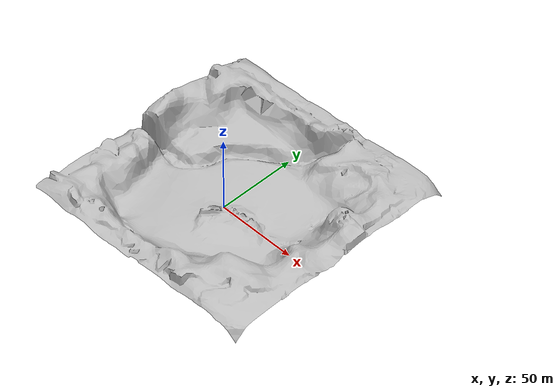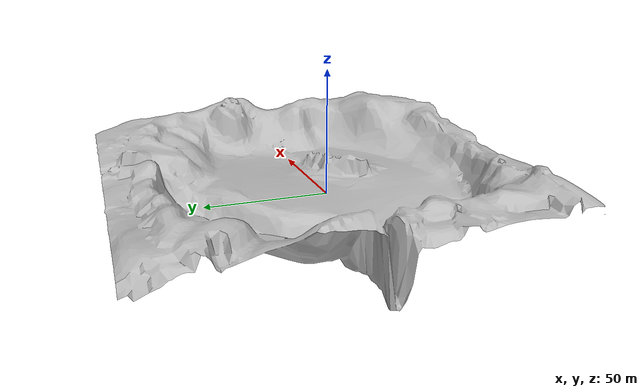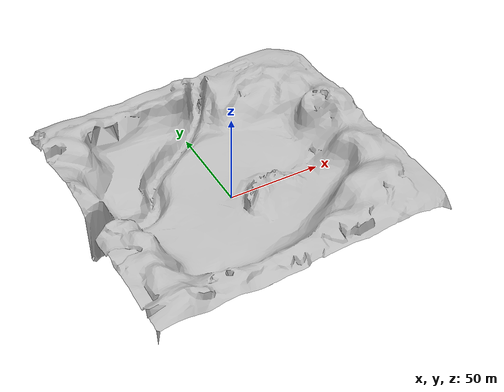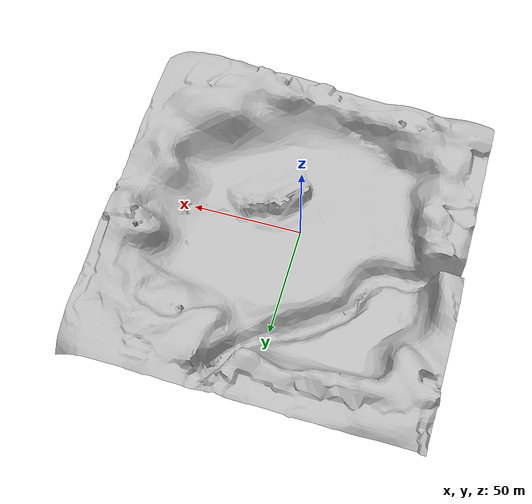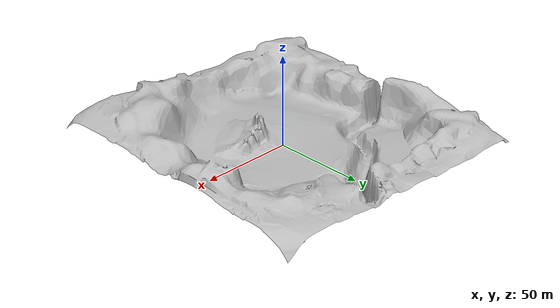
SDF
<?xml version="1.0" ?>
<sdf version="1.4">
  <world name="default">
    <!-- A global light source -->
    <include>
      <uri>model://sun</uri>
    </include>
    <!-- A ground plane -->
    <include>
      <uri>model://alpine</uri>
    </include>
  </world>
</sdf>

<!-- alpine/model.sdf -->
<sdf version="1.5">
  <model name="alpine_model">
    <static>
      true
    </static>
    <link name="alpine_link">
      <inertial>
        <mass>0.390</mass>
        <inertia>
          <ixx>0.00058</ixx>
          <ixy>0</ixy>
          <ixz>0</ixz>
          <iyy>0.00058</iyy>
          <iyz>0</iyz>
          <izz>0.00019</izz>
        </inertia>
      </inertial>
      <collision name="alpine_collision">
        <geometry>
          <mesh>
            <uri>model://alpine/meshes/alpine.dae</uri>
          </mesh>
        </geometry>
        <surface>
          <friction>
            <ode>
              <mu>1.0</mu>
              <mu2>1.0</mu2>
            </ode>
          </friction>
          <contact>
            <ode>
              <kp>10000000.0</kp>
              <kd>1.0</kd>
              <min_depth>0.001</min_depth>
              <max_vel>0.1</max_vel>
            </ode>
          </contact>
        </surface>
      </collision>
      <visual name="alpine_visual">
        <geometry>
          <mesh>
            <uri>model://alpine/meshes/alpine.dae</uri>
          </mesh>
        </geometry>
      </visual>
    </link>
  </model>
</sdf>
